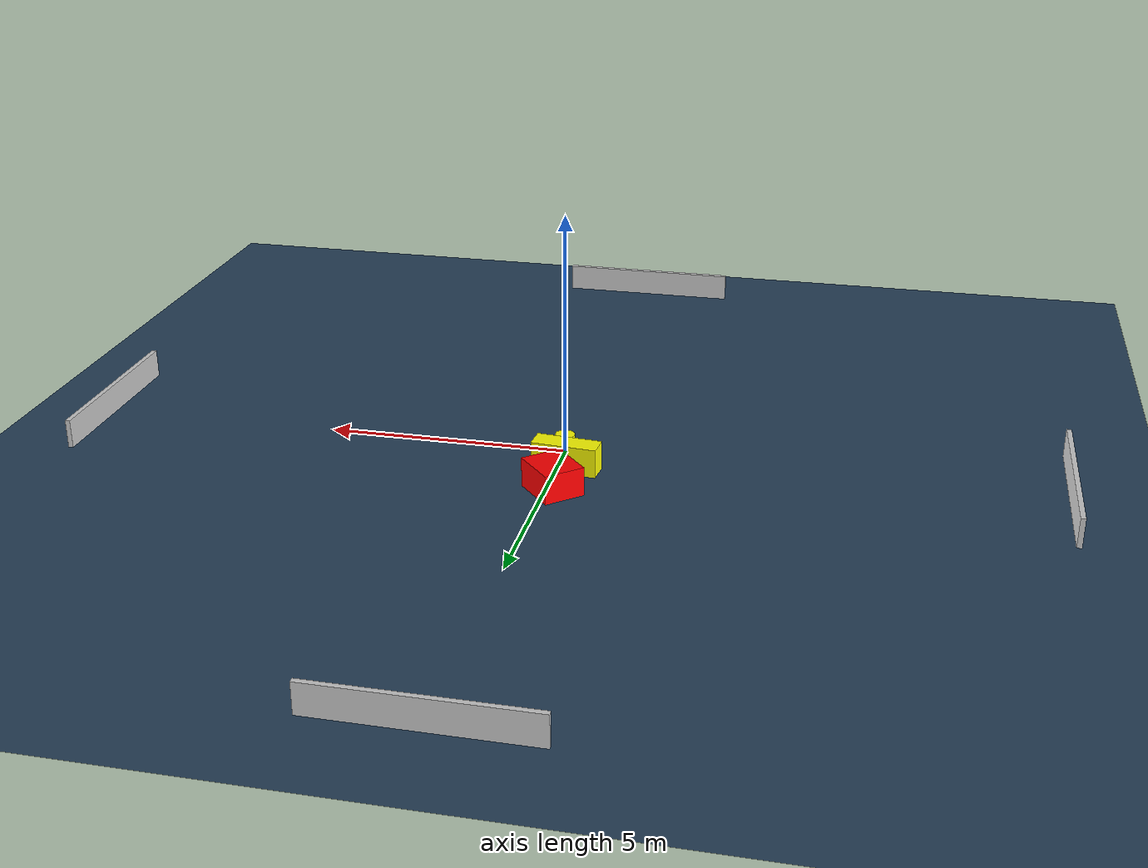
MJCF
<?xml version="1.0" ?>
<mujoco model="generated_environment">
  <option timestep="0.01" integrator="RK4" cone="elliptic"/>
  <default>
    <geom density="1"/>
  </default>
  <asset>
    <texture builtin="gradient" height="3072" name="skybox" rgb1="0.3 0.5 0.7" rgb2="0 0 0" type="skybox" width="512"/>
    <texture builtin="checker" height="300" name="groundplane" rgb1="0.2 0.3 0.4" rgb2="0.1 0.2 0.3" type="2d" width="300"/>
    <material name="groundplane" reflectance="0.2" texrepeat="5 5" texture="groundplane"/>
  </asset>
  <worldbody>
    <light dir="0 0 -1" directional="true" pos="0 0 1.5"/>
    <geom condim="3" friction="0.5 0.005 0.001" material="groundplane" name="floor" pos="0 0 0" size="0 0 0.05" type="plane"/>
    <body name="walls">
      <geom name="wall_1" condim="4" pos="-10.0 0.0 0.3" rgba="0.800000011920929 0.800000011920929 0.800000011920929 1.0" size="0.05 2.0 0.3" type="box"/>
      <geom name="wall_2" condim="4" pos="10.0 0.0 0.3" rgba="0.800000011920929 0.800000011920929 0.800000011920929 1.0" size="0.05 2.0 0.3" type="box"/>
      <geom name="wall_3" condim="4" pos="0.0 -10.0 0.3" rgba="0.800000011920929 0.800000011920929 0.800000011920929 1.0" size="2.0 0.05 0.3" type="box"/>
      <geom name="wall_4" condim="4" pos="0.0 10.0 0.3" rgba="0.800000011920929 0.800000011920929 0.800000011920929 1.0" size="2.0 0.05 0.3" type="box"/>
    </body>
    <body name="robot">
      <joint name="joint_x" type="slide" pos="0 0 0" axis="1 0 0"/>
      <joint name="joint_y" type="slide" pos="0 0 0" axis="0 1 0"/>
      <geom name="robot" type="cylinder" pos="0.0 0.0 0.2" size="0.2 0.2 0.0" mass="5.0" friction="1.0 0.005 0.0001" condim="4" rgba="1.0 1.0 0.0 1.0"/>
    </body>
    <body name="obstacle_1_movable">
      <geom name="obstacle_1_movable" condim="4" pos="-0.19884170104683221 0.7934505047953909 0.3" euler="0 0 265.0773076436011" friction="0.0 0.005 0.001" rgba="1.0 1.0 0.0 1.0" size="0.23386159802911366 0.6703809427521255 0.3" type="box" mass="0.1"/>
      <joint type="free"/>
    </body>
    <body name="obstacle_2_static">
      <geom name="obstacle_2_static" condim="4" pos="-0.14363426636455828 1.7860330851390696 0.3" euler="0 0 311.53897802847973" friction="0.0 0.005 0.001" rgba="1.0 0.0 0.0 1.0" size="0.48812426376894963 0.4249883957633372 0.3" type="box"/>
    </body>
  </worldbody>
  <actuator>
    <motor name="actuator_x" joint="joint_x" gear="1" ctrlrange="-1 1"/>
    <motor name="actuator_y" joint="joint_y" gear="1" ctrlrange="-1 1"/>
  </actuator>
</mujoco>
